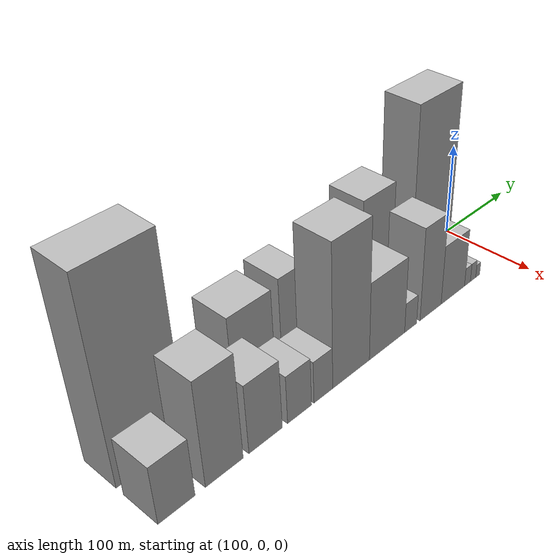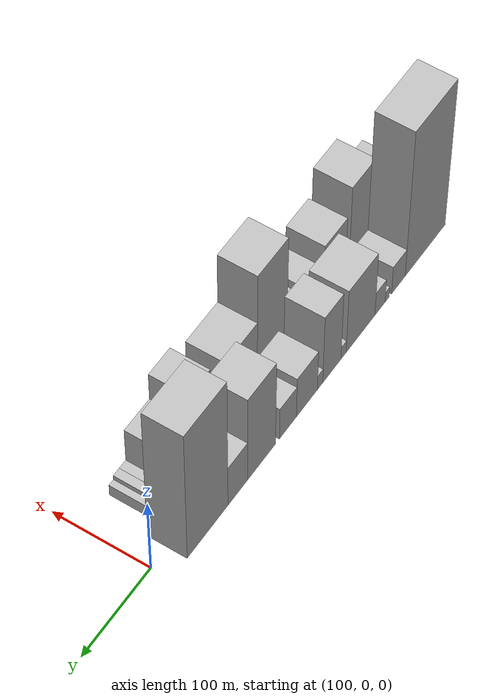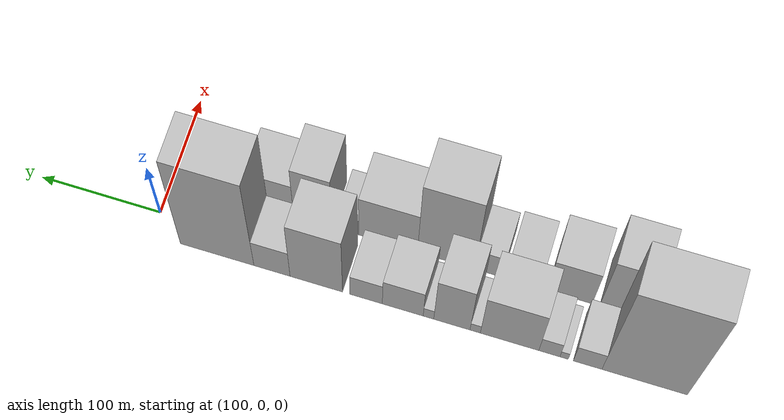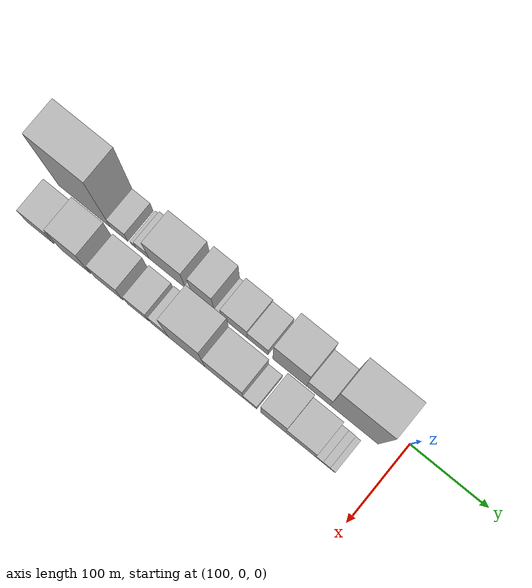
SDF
<sdf version="1.6">
 <world name="default">
  <model name="building_1">
   <static>1</static>
   <pose>100.0000 -403.8343 0 0.000000 0.000000 0.000000</pose>
   <link name="link">
    <pose>0 0 100.50 0 0 0</pose>
    <collision name="collision"><geometry><box><size>40.0000 68.3315 201.0000</size></box></geometry></collision>
    <visual name="visual">
     <cast_shadows>0</cast_shadows>
     <geometry><box><size>40.0000 68.3315 201.0000</size></box></geometry>
     <material>
      <script>
       <uri>model://HANNAS_wall/materials/scripts</uri>
       <uri>model://HANNAS_wall/materials/textures</uri>
       <name>vrc/HANNAS_wall</name>
      </script>
     </material>
    </visual>
   </link>
  </model>
  <model name="building_2">
   <static>1</static>
   <pose>100.0000 -358.1980 0 0.000000 0.000000 0.000000</pose>
   <link name="link">
    <pose>0 0 19.50 0 0 0</pose>
    <collision name="collision"><geometry><box><size>40.0000 22.9411 39.0000</size></box></geometry></collision>
    <visual name="visual">
     <cast_shadows>0</cast_shadows>
     <geometry><box><size>40.0000 22.9411 39.0000</size></box></geometry>
     <material>
      <script>
       <uri>model://HANNAS_wall/materials/scripts</uri>
       <uri>model://HANNAS_wall/materials/textures</uri>
       <name>vrc/HANNAS_wall</name>
      </script>
     </material>
    </visual>
   </link>
  </model>
  <model name="building_3">
   <static>1</static>
   <pose>100.0000 -339.3304 0 0.000000 0.000000 0.000000</pose>
   <link name="link">
    <pose>0 0 7.50 0 0 0</pose>
    <collision name="collision"><geometry><box><size>40.0000 6.7941 15.0000</size></box></geometry></collision>
    <visual name="visual">
     <cast_shadows>0</cast_shadows>
     <geometry><box><size>40.0000 6.7941 15.0000</size></box></geometry>
     <material>
      <script>
       <uri>model://HANNAS_wall/materials/scripts</uri>
       <uri>model://HANNAS_wall/materials/textures</uri>
       <name>vrc/HANNAS_wall</name>
      </script>
     </material>
    </visual>
   </link>
  </model>
  <model name="building_4">
   <static>1</static>
   <pose>100.0000 -327.4643 0 0.000000 0.000000 0.000000</pose>
   <link name="link">
    <pose>0 0 16.50 0 0 0</pose>
    <collision name="collision"><geometry><box><size>40.0000 16.9381 33.0000</size></box></geometry></collision>
    <visual name="visual">
     <cast_shadows>0</cast_shadows>
     <geometry><box><size>40.0000 16.9381 33.0000</size></box></geometry>
     <material>
      <script>
       <uri>model://HANNAS_wall/materials/scripts</uri>
       <uri>model://HANNAS_wall/materials/textures</uri>
       <name>vrc/HANNAS_wall</name>
      </script>
     </material>
    </visual>
   </link>
  </model>
  <model name="building_5">
   <static>1</static>
   <pose>100.0000 -295.2742 0 0.000000 0.000000 0.000000</pose>
   <link name="link">
    <pose>0 0 45.00 0 0 0</pose>
    <collision name="collision"><geometry><box><size>40.0000 47.4421 90.0000</size></box></geometry></collision>
    <visual name="visual">
     <cast_shadows>0</cast_shadows>
     <geometry><box><size>40.0000 47.4421 90.0000</size></box></geometry>
     <material>
      <script>
       <uri>model://HANNAS_wall/materials/scripts</uri>
       <uri>model://HANNAS_wall/materials/textures</uri>
       <name>vrc/HANNAS_wall</name>
      </script>
     </material>
    </visual>
   </link>
  </model>
  <model name="building_6">
   <static>1</static>
   <pose>100.0000 -267.3471 0 0.000000 0.000000 0.000000</pose>
   <link name="link">
    <pose>0 0 9.00 0 0 0</pose>
    <collision name="collision"><geometry><box><size>40.0000 8.4121 18.0000</size></box></geometry></collision>
    <visual name="visual">
     <cast_shadows>0</cast_shadows>
     <geometry><box><size>40.0000 8.4121 18.0000</size></box></geometry>
     <material>
      <script>
       <uri>model://HANNAS_wall/materials/scripts</uri>
       <uri>model://HANNAS_wall/materials/textures</uri>
       <name>vrc/HANNAS_wall</name>
      </script>
     </material>
    </visual>
   </link>
  </model>
  <model name="building_7">
   <static>1</static>
   <pose>100.0000 -248.3667 0 0.000000 0.000000 0.000000</pose>
   <link name="link">
    <pose>0 0 48.00 0 0 0</pose>
    <collision name="collision"><geometry><box><size>40.0000 29.5487 96.0000</size></box></geometry></collision>
    <visual name="visual">
     <cast_shadows>0</cast_shadows>
     <geometry><box><size>40.0000 29.5487 96.0000</size></box></geometry>
     <material>
      <script>
       <uri>model://HANNAS_wall/materials/scripts</uri>
       <uri>model://HANNAS_wall/materials/textures</uri>
       <name>vrc/HANNAS_wall</name>
      </script>
     </material>
    </visual>
   </link>
  </model>
  <model name="building_8">
   <static>1</static>
   <pose>100.0000 -229.2808 0 0.000000 0.000000 0.000000</pose>
   <link name="link">
    <pose>0 0 10.50 0 0 0</pose>
    <collision name="collision"><geometry><box><size>40.0000 8.6232 21.0000</size></box></geometry></collision>
    <visual name="visual">
     <cast_shadows>0</cast_shadows>
     <geometry><box><size>40.0000 8.6232 21.0000</size></box></geometry>
     <material>
      <script>
       <uri>model://HANNAS_wall/materials/scripts</uri>
       <uri>model://HANNAS_wall/materials/textures</uri>
       <name>vrc/HANNAS_wall</name>
      </script>
     </material>
    </visual>
   </link>
  </model>
  <model name="building_9">
   <static>1</static>
   <pose>100.0000 -208.2306 0 0.000000 0.000000 0.000000</pose>
   <link name="link">
    <pose>0 0 28.50 0 0 0</pose>
    <collision name="collision"><geometry><box><size>40.0000 33.4772 57.0000</size></box></geometry></collision>
    <visual name="visual">
     <cast_shadows>0</cast_shadows>
     <geometry><box><size>40.0000 33.4772 57.0000</size></box></geometry>
     <material>
      <script>
       <uri>model://HANNAS_wall/materials/scripts</uri>
       <uri>model://HANNAS_wall/materials/textures</uri>
       <name>vrc/HANNAS_wall</name>
      </script>
     </material>
    </visual>
   </link>
  </model>
  <model name="building_10">
   <static>1</static>
   <pose>100.0000 -178.1607 0 0.000000 0.000000 0.000000</pose>
   <link name="link">
    <pose>0 0 22.50 0 0 0</pose>
    <collision name="collision"><geometry><box><size>40.0000 26.6627 45.0000</size></box></geometry></collision>
    <visual name="visual">
     <cast_shadows>0</cast_shadows>
     <geometry><box><size>40.0000 26.6627 45.0000</size></box></geometry>
     <material>
      <script>
       <uri>model://HANNAS_wall/materials/scripts</uri>
       <uri>model://HANNAS_wall/materials/textures</uri>
       <name>vrc/HANNAS_wall</name>
      </script>
     </material>
    </visual>
   </link>
  </model>
  <model name="building_11">
   <static>1</static>
   <pose>100.0000 -137.1251 0 0.000000 0.000000 0.000000</pose>
   <link name="link">
    <pose>0 0 60.00 0 0 0</pose>
    <collision name="collision"><geometry><box><size>40.0000 43.4084 120.0000</size></box></geometry></collision>
    <visual name="visual">
     <cast_shadows>0</cast_shadows>
     <geometry><box><size>40.0000 43.4084 120.0000</size></box></geometry>
     <material>
      <script>
       <uri>model://HANNAS_wall/materials/scripts</uri>
       <uri>model://HANNAS_wall/materials/textures</uri>
       <name>vrc/HANNAS_wall</name>
      </script>
     </material>
    </visual>
   </link>
  </model>
  <model name="building_12">
   <static>1</static>
   <pose>100.0000 -100.4336 0 0.000000 0.000000 0.000000</pose>
   <link name="link">
    <pose>0 0 28.50 0 0 0</pose>
    <collision name="collision"><geometry><box><size>40.0000 29.9746 57.0000</size></box></geometry></collision>
    <visual name="visual">
     <cast_shadows>0</cast_shadows>
     <geometry><box><size>40.0000 29.9746 57.0000</size></box></geometry>
     <material>
      <script>
       <uri>model://HANNAS_wall/materials/scripts</uri>
       <uri>model://HANNAS_wall/materials/textures</uri>
       <name>vrc/HANNAS_wall</name>
      </script>
     </material>
    </visual>
   </link>
  </model>
  <model name="building_13">
   <static>1</static>
   <pose>100.0000 -54.7586 0 0.000000 0.000000 0.000000</pose>
   <link name="link">
    <pose>0 0 91.50 0 0 0</pose>
    <collision name="collision"><geometry><box><size>40.0000 61.3755 183.0000</size></box></geometry></collision>
    <visual name="visual">
     <cast_shadows>0</cast_shadows>
     <geometry><box><size>40.0000 61.3755 183.0000</size></box></geometry>
     <material>
      <script>
       <uri>model://HANNAS_wall/materials/scripts</uri>
       <uri>model://HANNAS_wall/materials/textures</uri>
       <name>vrc/HANNAS_wall</name>
      </script>
     </material>
    </visual>
   </link>
  </model>
  <model name="building_25">
   <static>1</static>
   <pose>149.0000 -420.5797 0 0.000000 0.000000 0.000000</pose>
   <link name="link">
    <pose>0 0 30.00 0 0 0</pose>
    <collision name="collision"><geometry><box><size>40.0000 34.8406 60.0000</size></box></geometry></collision>
    <visual name="visual">
     <cast_shadows>0</cast_shadows>
     <geometry><box><size>40.0000 34.8406 60.0000</size></box></geometry>
     <material>
      <script>
       <uri>model://HANNAS_wall/materials/scripts</uri>
       <uri>model://HANNAS_wall/materials/textures</uri>
       <name>vrc/HANNAS_wall</name>
      </script>
     </material>
    </visual>
   </link>
  </model>
  <model name="building_26">
   <static>1</static>
   <pose>149.0000 -373.9701 0 0.000000 0.000000 0.000000</pose>
   <link name="link">
    <pose>0 0 54.00 0 0 0</pose>
    <collision name="collision"><geometry><box><size>40.0000 38.3785 108.0000</size></box></geometry></collision>
    <visual name="visual">
     <cast_shadows>0</cast_shadows>
     <geometry><box><size>40.0000 38.3785 108.0000</size></box></geometry>
     <material>
      <script>
       <uri>model://HANNAS_wall/materials/scripts</uri>
       <uri>model://HANNAS_wall/materials/textures</uri>
       <name>vrc/HANNAS_wall</name>
      </script>
     </material>
    </visual>
   </link>
  </model>
  <model name="building_27">
   <static>1</static>
   <pose>149.0000 -330.5344 0 0.000000 0.000000 0.000000</pose>
   <link name="link">
    <pose>0 0 36.00 0 0 0</pose>
    <collision name="collision"><geometry><box><size>40.0000 36.4929 72.0000</size></box></geometry></collision>
    <visual name="visual">
     <cast_shadows>0</cast_shadows>
     <geometry><box><size>40.0000 36.4929 72.0000</size></box></geometry>
     <material>
      <script>
       <uri>model://HANNAS_wall/materials/scripts</uri>
       <uri>model://HANNAS_wall/materials/textures</uri>
       <name>vrc/HANNAS_wall</name>
      </script>
     </material>
    </visual>
   </link>
  </model>
  <model name="building_28">
   <static>1</static>
   <pose>149.0000 -292.4167 0 0.000000 0.000000 0.000000</pose>
   <link name="link">
    <pose>0 0 25.50 0 0 0</pose>
    <collision name="collision"><geometry><box><size>40.0000 27.7424 51.0000</size></box></geometry></collision>
    <visual name="visual">
     <cast_shadows>0</cast_shadows>
     <geometry><box><size>40.0000 27.7424 51.0000</size></box></geometry>
     <material>
      <script>
       <uri>model://HANNAS_wall/materials/scripts</uri>
       <uri>model://HANNAS_wall/materials/textures</uri>
       <name>vrc/HANNAS_wall</name>
      </script>
     </material>
    </visual>
   </link>
  </model>
  <model name="building_29">
   <static>1</static>
   <pose>149.0000 -264.1624 0 0.000000 0.000000 0.000000</pose>
   <link name="link">
    <pose>0 0 22.50 0 0 0</pose>
    <collision name="collision"><geometry><box><size>40.0000 22.7663 45.0000</size></box></geometry></collision>
    <visual name="visual">
     <cast_shadows>0</cast_shadows>
     <geometry><box><size>40.0000 22.7663 45.0000</size></box></geometry>
     <material>
      <script>
       <uri>model://HANNAS_wall/materials/scripts</uri>
       <uri>model://HANNAS_wall/materials/textures</uri>
       <name>vrc/HANNAS_wall</name>
      </script>
     </material>
    </visual>
   </link>
  </model>
  <model name="building_30">
   <static>1</static>
   <pose>149.0000 -229.1764 0 0.000000 0.000000 0.000000</pose>
   <link name="link">
    <pose>0 0 75.00 0 0 0</pose>
    <collision name="collision"><geometry><box><size>40.0000 47.2056 150.0000</size></box></geometry></collision>
    <visual name="visual">
     <cast_shadows>0</cast_shadows>
     <geometry><box><size>40.0000 47.2056 150.0000</size></box></geometry>
     <material>
      <script>
       <uri>model://HANNAS_wall/materials/scripts</uri>
       <uri>model://HANNAS_wall/materials/textures</uri>
       <name>vrc/HANNAS_wall</name>
      </script>
     </material>
    </visual>
   </link>
  </model>
  <model name="building_31">
   <static>1</static>
   <pose>149.0000 -181.1729 0 0.000000 0.000000 0.000000</pose>
   <link name="link">
    <pose>0 0 42.00 0 0 0</pose>
    <collision name="collision"><geometry><box><size>40.0000 48.8014 84.0000</size></box></geometry></collision>
    <visual name="visual">
     <cast_shadows>0</cast_shadows>
     <geometry><box><size>40.0000 48.8014 84.0000</size></box></geometry>
     <material>
      <script>
       <uri>model://HANNAS_wall/materials/scripts</uri>
       <uri>model://HANNAS_wall/materials/textures</uri>
       <name>vrc/HANNAS_wall</name>
      </script>
     </material>
    </visual>
   </link>
  </model>
  <model name="building_32">
   <static>1</static>
   <pose>149.0000 -148.0773 0 0.000000 0.000000 0.000000</pose>
   <link name="link">
    <pose>0 0 16.50 0 0 0</pose>
    <collision name="collision"><geometry><box><size>40.0000 17.3899 33.0000</size></box></geometry></collision>
    <visual name="visual">
     <cast_shadows>0</cast_shadows>
     <geometry><box><size>40.0000 17.3899 33.0000</size></box></geometry>
     <material>
      <script>
       <uri>model://HANNAS_wall/materials/scripts</uri>
       <uri>model://HANNAS_wall/materials/textures</uri>
       <name>vrc/HANNAS_wall</name>
      </script>
     </material>
    </visual>
   </link>
  </model>
  <model name="building_33">
   <static>1</static>
   <pose>149.0000 -118.4315 0 0.000000 0.000000 0.000000</pose>
   <link name="link">
    <pose>0 0 51.00 0 0 0</pose>
    <collision name="collision"><geometry><box><size>40.0000 31.9018 102.0000</size></box></geometry></collision>
    <visual name="visual">
     <cast_shadows>0</cast_shadows>
     <geometry><box><size>40.0000 31.9018 102.0000</size></box></geometry>
     <material>
      <script>
       <uri>model://HANNAS_wall/materials/scripts</uri>
       <uri>model://HANNAS_wall/materials/textures</uri>
       <name>vrc/HANNAS_wall</name>
      </script>
     </material>
    </visual>
   </link>
  </model>
  <model name="building_34">
   <static>1</static>
   <pose>149.0000 -83.8660 0 0.000000 0.000000 0.000000</pose>
   <link name="link">
    <pose>0 0 33.00 0 0 0</pose>
    <collision name="collision"><geometry><box><size>40.0000 37.2292 66.0000</size></box></geometry></collision>
    <visual name="visual">
     <cast_shadows>0</cast_shadows>
     <geometry><box><size>40.0000 37.2292 66.0000</size></box></geometry>
     <material>
      <script>
       <uri>model://HANNAS_wall/materials/scripts</uri>
       <uri>model://HANNAS_wall/materials/textures</uri>
       <name>vrc/HANNAS_wall</name>
      </script>
     </material>
    </visual>
   </link>
  </model>
  <model name="building_35">
   <static>1</static>
   <pose>149.0000 -60.4325 0 0.000000 0.000000 0.000000</pose>
   <link name="link">
    <pose>0 0 10.50 0 0 0</pose>
    <collision name="collision"><geometry><box><size>40.0000 9.6378 21.0000</size></box></geometry></collision>
    <visual name="visual">
     <cast_shadows>0</cast_shadows>
     <geometry><box><size>40.0000 9.6378 21.0000</size></box></geometry>
     <material>
      <script>
       <uri>model://HANNAS_wall/materials/scripts</uri>
       <uri>model://HANNAS_wall/materials/textures</uri>
       <name>vrc/HANNAS_wall</name>
      </script>
     </material>
    </visual>
   </link>
  </model>
  <model name="building_36">
   <static>1</static>
   <pose>149.0000 -51.1840 0 0.000000 0.000000 0.000000</pose>
   <link name="link">
    <pose>0 0 10.50 0 0 0</pose>
    <collision name="collision"><geometry><box><size>40.0000 8.8593 21.0000</size></box></geometry></collision>
    <visual name="visual">
     <cast_shadows>0</cast_shadows>
     <geometry><box><size>40.0000 8.8593 21.0000</size></box></geometry>
     <material>
      <script>
       <uri>model://HANNAS_wall/materials/scripts</uri>
       <uri>model://HANNAS_wall/materials/textures</uri>
       <name>vrc/HANNAS_wall</name>
      </script>
     </material>
    </visual>
   </link>
  </model>
  <model name="building_37">
   <static>1</static>
   <pose>149.0000 -43.3671 0 0.000000 0.000000 0.000000</pose>
   <link name="link">
    <pose>0 0 7.50 0 0 0</pose>
    <collision name="collision"><geometry><box><size>40.0000 6.7743 15.0000</size></box></geometry></collision>
    <visual name="visual">
     <cast_shadows>0</cast_shadows>
     <geometry><box><size>40.0000 6.7743 15.0000</size></box></geometry>
     <material>
      <script>
       <uri>model://HANNAS_wall/materials/scripts</uri>
       <uri>model://HANNAS_wall/materials/textures</uri>
       <name>vrc/HANNAS_wall</name>
      </script>
     </material>
    </visual>
   </link>
  </model>
 </world>
</sdf>
